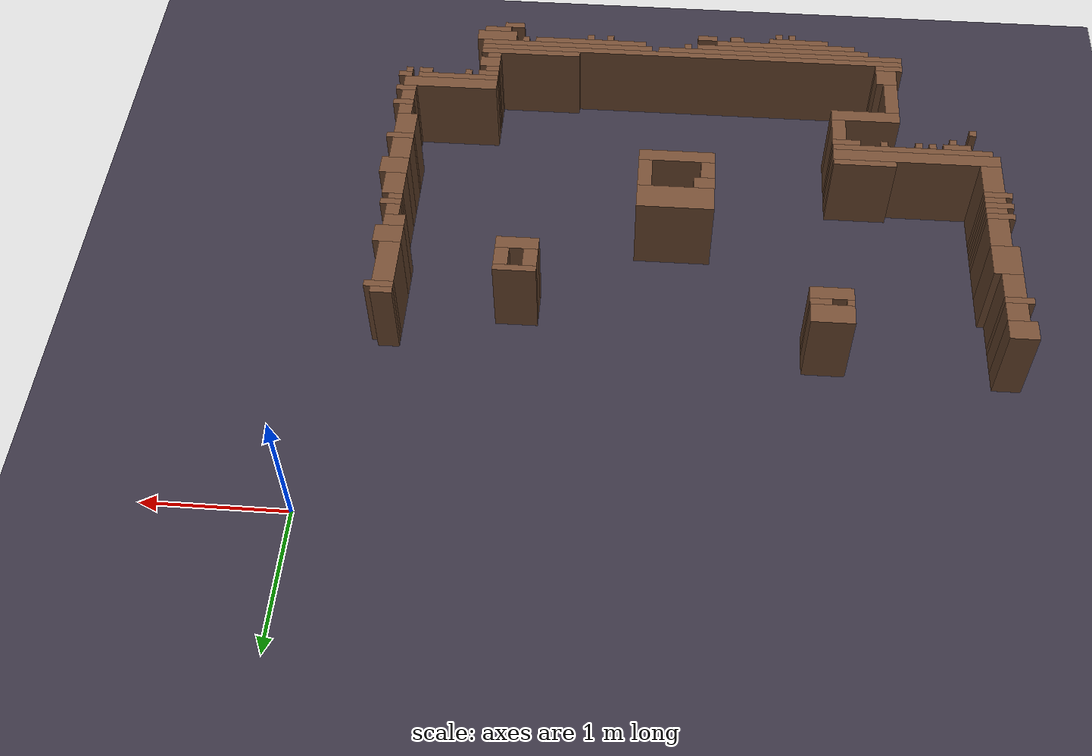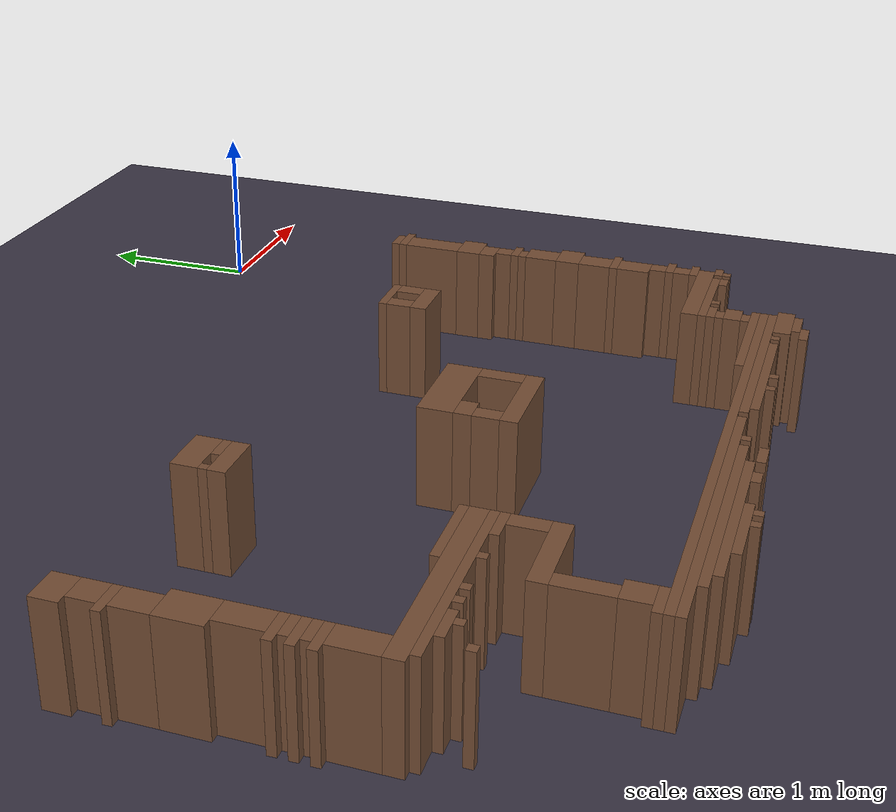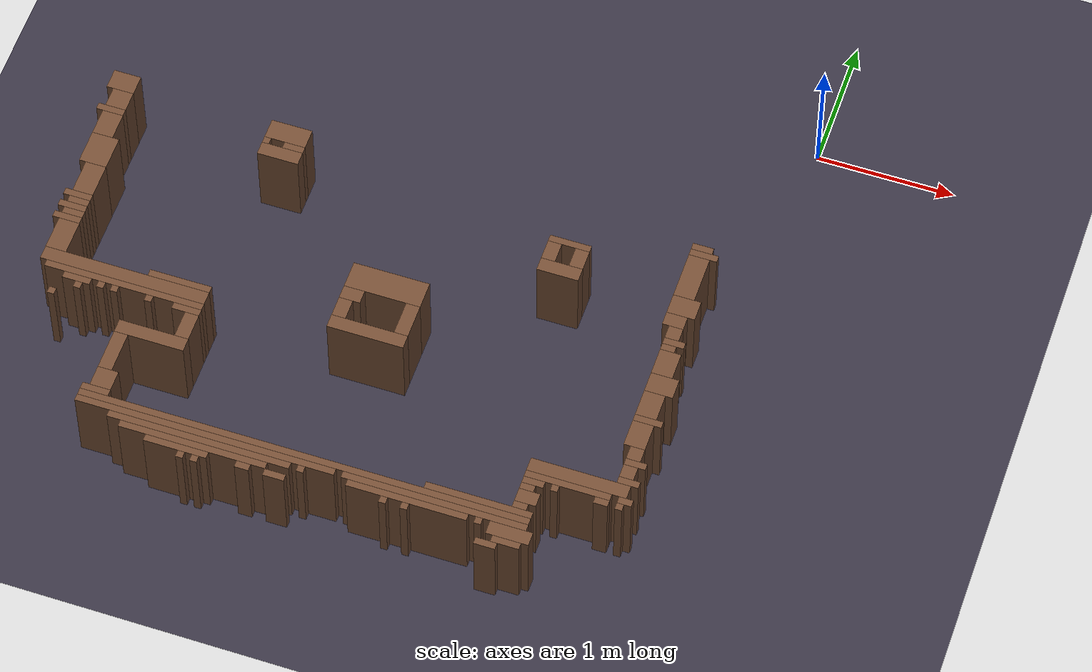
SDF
<sdf version="1.8">
 <world name="holloween">
  <model name="ground_plane">
   <static>true</static>
   <link name="link">
    <collision name="collision">
     <geometry><plane><normal>0 0 1</normal><size>100 100</size></plane></geometry>
    </collision>
    <visual name="visual">
     <geometry><plane><normal>0 0 1</normal><size>100 100</size></plane></geometry>
     <material><ambient>0.22 0.2 0.26 1</ambient><diffuse>0.22 0.2 0.26 1</diffuse></material>
    </visual>
   </link>
  </model>
  <model name="wall_86">
   <static>true</static>
   <pose>-4.709 -1.351 0.300 0 0 0</pose>
   <link name="l">
    <collision name="c"><geometry><box><size>0.200 0.150 0.600</size></box></geometry></collision>
    <visual name="v">
     <geometry><box><size>0.200 0.150 0.600</size></box></geometry>
     <material><ambient>0.45 0.3 0.2 1</ambient><diffuse>0.45 0.3 0.2 1</diffuse></material>
    </visual>
   </link>
  </model>
  <model name="wall_87">
   <static>true</static>
   <pose>-0.434 -1.401 0.300 0 0 0</pose>
   <link name="l">
    <collision name="c"><geometry><box><size>0.150 0.050 0.600</size></box></geometry></collision>
    <visual name="v">
     <geometry><box><size>0.150 0.050 0.600</size></box></geometry>
     <material><ambient>0.45 0.3 0.2 1</ambient><diffuse>0.45 0.3 0.2 1</diffuse></material>
    </visual>
   </link>
  </model>
  <model name="wall_88">
   <static>true</static>
   <pose>-3.459 -1.401 0.300 0 0 0</pose>
   <link name="l">
    <collision name="c"><geometry><box><size>0.300 0.150 0.600</size></box></geometry></collision>
    <visual name="v">
     <geometry><box><size>0.300 0.150 0.600</size></box></geometry>
     <material><ambient>0.45 0.3 0.2 1</ambient><diffuse>0.45 0.3 0.2 1</diffuse></material>
    </visual>
   </link>
  </model>
  <model name="wall_89">
   <static>true</static>
   <pose>-0.409 -1.451 0.300 0 0 0</pose>
   <link name="l">
    <collision name="c"><geometry><box><size>0.200 0.050 0.600</size></box></geometry></collision>
    <visual name="v">
     <geometry><box><size>0.200 0.050 0.600</size></box></geometry>
     <material><ambient>0.45 0.3 0.2 1</ambient><diffuse>0.45 0.3 0.2 1</diffuse></material>
    </visual>
   </link>
  </model>
  <model name="wall_90">
   <static>true</static>
   <pose>-3.384 -1.501 0.300 0 0 0</pose>
   <link name="l">
    <collision name="c"><geometry><box><size>0.150 0.050 0.600</size></box></geometry></collision>
    <visual name="v">
     <geometry><box><size>0.150 0.050 0.600</size></box></geometry>
     <material><ambient>0.45 0.3 0.2 1</ambient><diffuse>0.45 0.3 0.2 1</diffuse></material>
    </visual>
   </link>
  </model>
  <model name="wall_91">
   <static>true</static>
   <pose>-3.584 -1.501 0.300 0 0 0</pose>
   <link name="l">
    <collision name="c"><geometry><box><size>0.050 0.050 0.600</size></box></geometry></collision>
    <visual name="v">
     <geometry><box><size>0.050 0.050 0.600</size></box></geometry>
     <material><ambient>0.45 0.3 0.2 1</ambient><diffuse>0.45 0.3 0.2 1</diffuse></material>
    </visual>
   </link>
  </model>
  <model name="wall_92">
   <static>true</static>
   <pose>-4.684 -1.501 0.300 0 0 0</pose>
   <link name="l">
    <collision name="c"><geometry><box><size>0.150 0.150 0.600</size></box></geometry></collision>
    <visual name="v">
     <geometry><box><size>0.150 0.150 0.600</size></box></geometry>
     <material><ambient>0.45 0.3 0.2 1</ambient><diffuse>0.45 0.3 0.2 1</diffuse></material>
    </visual>
   </link>
  </model>
  <model name="wall_93">
   <static>true</static>
   <pose>-3.459 -1.576 0.300 0 0 0</pose>
   <link name="l">
    <collision name="c"><geometry><box><size>0.300 0.100 0.600</size></box></geometry></collision>
    <visual name="v">
     <geometry><box><size>0.300 0.100 0.600</size></box></geometry>
     <material><ambient>0.45 0.3 0.2 1</ambient><diffuse>0.45 0.3 0.2 1</diffuse></material>
    </visual>
   </link>
  </model>
  <model name="wall_94">
   <static>true</static>
   <pose>-4.709 -1.601 0.300 0 0 0</pose>
   <link name="l">
    <collision name="c"><geometry><box><size>0.200 0.050 0.600</size></box></geometry></collision>
    <visual name="v">
     <geometry><box><size>0.200 0.050 0.600</size></box></geometry>
     <material><ambient>0.45 0.3 0.2 1</ambient><diffuse>0.45 0.3 0.2 1</diffuse></material>
    </visual>
   </link>
  </model>
  <model name="wall_95">
   <static>true</static>
   <pose>-1.309 -1.651 0.300 0 0 0</pose>
   <link name="l">
    <collision name="c"><geometry><box><size>0.300 0.050 0.600</size></box></geometry></collision>
    <visual name="v">
     <geometry><box><size>0.300 0.050 0.600</size></box></geometry>
     <material><ambient>0.45 0.3 0.2 1</ambient><diffuse>0.45 0.3 0.2 1</diffuse></material>
    </visual>
   </link>
  </model>
  <model name="wall_96">
   <static>true</static>
   <pose>-0.434 -1.651 0.300 0 0 0</pose>
   <link name="l">
    <collision name="c"><geometry><box><size>0.150 0.350 0.600</size></box></geometry></collision>
    <visual name="v">
     <geometry><box><size>0.150 0.350 0.600</size></box></geometry>
     <material><ambient>0.45 0.3 0.2 1</ambient><diffuse>0.45 0.3 0.2 1</diffuse></material>
    </visual>
   </link>
  </model>
  <model name="wall_97">
   <static>true</static>
   <pose>-4.684 -1.726 0.300 0 0 0</pose>
   <link name="l">
    <collision name="c"><geometry><box><size>0.150 0.200 0.600</size></box></geometry></collision>
    <visual name="v">
     <geometry><box><size>0.150 0.200 0.600</size></box></geometry>
     <material><ambient>0.45 0.3 0.2 1</ambient><diffuse>0.45 0.3 0.2 1</diffuse></material>
    </visual>
   </link>
  </model>
  <model name="wall_98">
   <static>true</static>
   <pose>-1.409 -1.751 0.300 0 0 0</pose>
   <link name="l">
    <collision name="c"><geometry><box><size>0.100 0.150 0.600</size></box></geometry></collision>
    <visual name="v">
     <geometry><box><size>0.100 0.150 0.600</size></box></geometry>
     <material><ambient>0.45 0.3 0.2 1</ambient><diffuse>0.45 0.3 0.2 1</diffuse></material>
    </visual>
   </link>
  </model>
  <model name="wall_99">
   <static>true</static>
   <pose>-1.209 -1.751 0.300 0 0 0</pose>
   <link name="l">
    <collision name="c"><geometry><box><size>0.100 0.150 0.600</size></box></geometry></collision>
    <visual name="v">
     <geometry><box><size>0.100 0.150 0.600</size></box></geometry>
     <material><ambient>0.45 0.3 0.2 1</ambient><diffuse>0.45 0.3 0.2 1</diffuse></material>
    </visual>
   </link>
  </model>
  <model name="wall_100">
   <static>true</static>
   <pose>-1.309 -1.876 0.300 0 0 0</pose>
   <link name="l">
    <collision name="c"><geometry><box><size>0.300 0.100 0.600</size></box></geometry></collision>
    <visual name="v">
     <geometry><box><size>0.300 0.100 0.600</size></box></geometry>
     <material><ambient>0.45 0.3 0.2 1</ambient><diffuse>0.45 0.3 0.2 1</diffuse></material>
    </visual>
   </link>
  </model>
  <model name="wall_101">
   <static>true</static>
   <pose>-0.409 -1.901 0.300 0 0 0</pose>
   <link name="l">
    <collision name="c"><geometry><box><size>0.200 0.150 0.600</size></box></geometry></collision>
    <visual name="v">
     <geometry><box><size>0.200 0.150 0.600</size></box></geometry>
     <material><ambient>0.45 0.3 0.2 1</ambient><diffuse>0.45 0.3 0.2 1</diffuse></material>
    </visual>
   </link>
  </model>
  <model name="wall_102">
   <static>true</static>
   <pose>-4.659 -1.951 0.300 0 0 0</pose>
   <link name="l">
    <collision name="c"><geometry><box><size>0.200 0.250 0.600</size></box></geometry></collision>
    <visual name="v">
     <geometry><box><size>0.200 0.250 0.600</size></box></geometry>
     <material><ambient>0.45 0.3 0.2 1</ambient><diffuse>0.45 0.3 0.2 1</diffuse></material>
    </visual>
   </link>
  </model>
  <model name="wall_103">
   <static>true</static>
   <pose>-0.434 -2.026 0.300 0 0 0</pose>
   <link name="l">
    <collision name="c"><geometry><box><size>0.150 0.100 0.600</size></box></geometry></collision>
    <visual name="v">
     <geometry><box><size>0.150 0.100 0.600</size></box></geometry>
     <material><ambient>0.45 0.3 0.2 1</ambient><diffuse>0.45 0.3 0.2 1</diffuse></material>
    </visual>
   </link>
  </model>
  <model name="wall_104">
   <static>true</static>
   <pose>-0.409 -2.126 0.300 0 0 0</pose>
   <link name="l">
    <collision name="c"><geometry><box><size>0.100 0.100 0.600</size></box></geometry></collision>
    <visual name="v">
     <geometry><box><size>0.100 0.100 0.600</size></box></geometry>
     <material><ambient>0.45 0.3 0.2 1</ambient><diffuse>0.45 0.3 0.2 1</diffuse></material>
    </visual>
   </link>
  </model>
  <model name="wall_105">
   <static>true</static>
   <pose>-0.384 -2.201 0.300 0 0 0</pose>
   <link name="l">
    <collision name="c"><geometry><box><size>0.150 0.050 0.600</size></box></geometry></collision>
    <visual name="v">
     <geometry><box><size>0.150 0.050 0.600</size></box></geometry>
     <material><ambient>0.45 0.3 0.2 1</ambient><diffuse>0.45 0.3 0.2 1</diffuse></material>
    </visual>
   </link>
  </model>
  <model name="wall_106">
   <static>true</static>
   <pose>-0.409 -2.251 0.300 0 0 0</pose>
   <link name="l">
    <collision name="c"><geometry><box><size>0.100 0.050 0.600</size></box></geometry></collision>
    <visual name="v">
     <geometry><box><size>0.100 0.050 0.600</size></box></geometry>
     <material><ambient>0.45 0.3 0.2 1</ambient><diffuse>0.45 0.3 0.2 1</diffuse></material>
    </visual>
   </link>
  </model>
  <model name="wall_107">
   <static>true</static>
   <pose>-4.634 -2.201 0.300 0 0 0</pose>
   <link name="l">
    <collision name="c"><geometry><box><size>0.150 0.250 0.600</size></box></geometry></collision>
    <visual name="v">
     <geometry><box><size>0.150 0.250 0.600</size></box></geometry>
     <material><ambient>0.45 0.3 0.2 1</ambient><diffuse>0.45 0.3 0.2 1</diffuse></material>
    </visual>
   </link>
  </model>
  <model name="wall_108">
   <static>true</static>
   <pose>-4.659 -2.351 0.300 0 0 0</pose>
   <link name="l">
    <collision name="c"><geometry><box><size>0.200 0.050 0.600</size></box></geometry></collision>
    <visual name="v">
     <geometry><box><size>0.200 0.050 0.600</size></box></geometry>
     <material><ambient>0.45 0.3 0.2 1</ambient><diffuse>0.45 0.3 0.2 1</diffuse></material>
    </visual>
   </link>
  </model>
  <model name="wall_109">
   <static>true</static>
   <pose>-4.634 -2.401 0.300 0 0 0</pose>
   <link name="l">
    <collision name="c"><geometry><box><size>0.150 0.050 0.600</size></box></geometry></collision>
    <visual name="v">
     <geometry><box><size>0.150 0.050 0.600</size></box></geometry>
     <material><ambient>0.45 0.3 0.2 1</ambient><diffuse>0.45 0.3 0.2 1</diffuse></material>
    </visual>
   </link>
  </model>
  <model name="wall_110">
   <static>true</static>
   <pose>-0.384 -2.376 0.300 0 0 0</pose>
   <link name="l">
    <collision name="c"><geometry><box><size>0.150 0.200 0.600</size></box></geometry></collision>
    <visual name="v">
     <geometry><box><size>0.150 0.200 0.600</size></box></geometry>
     <material><ambient>0.45 0.3 0.2 1</ambient><diffuse>0.45 0.3 0.2 1</diffuse></material>
    </visual>
   </link>
  </model>
  <model name="wall_111">
   <static>true</static>
   <pose>-2.384 -2.376 0.300 0 0 0</pose>
   <link name="l">
    <collision name="c"><geometry><box><size>0.550 0.200 0.600</size></box></geometry></collision>
    <visual name="v">
     <geometry><box><size>0.550 0.200 0.600</size></box></geometry>
     <material><ambient>0.45 0.3 0.2 1</ambient><diffuse>0.45 0.3 0.2 1</diffuse></material>
    </visual>
   </link>
  </model>
  <model name="wall_112">
   <static>true</static>
   <pose>-4.659 -2.451 0.300 0 0 0</pose>
   <link name="l">
    <collision name="c"><geometry><box><size>0.200 0.050 0.600</size></box></geometry></collision>
    <visual name="v">
     <geometry><box><size>0.200 0.050 0.600</size></box></geometry>
     <material><ambient>0.45 0.3 0.2 1</ambient><diffuse>0.45 0.3 0.2 1</diffuse></material>
    </visual>
   </link>
  </model>
  <model name="wall_113">
   <static>true</static>
   <pose>-4.634 -2.501 0.300 0 0 0</pose>
   <link name="l">
    <collision name="c"><geometry><box><size>0.150 0.050 0.600</size></box></geometry></collision>
    <visual name="v">
     <geometry><box><size>0.150 0.050 0.600</size></box></geometry>
     <material><ambient>0.45 0.3 0.2 1</ambient><diffuse>0.45 0.3 0.2 1</diffuse></material>
    </visual>
   </link>
  </model>
  <model name="wall_114">
   <static>true</static>
   <pose>-2.584 -2.526 0.300 0 0 0</pose>
   <link name="l">
    <collision name="c"><geometry><box><size>0.150 0.100 0.600</size></box></geometry></collision>
    <visual name="v">
     <geometry><box><size>0.150 0.100 0.600</size></box></geometry>
     <material><ambient>0.45 0.3 0.2 1</ambient><diffuse>0.45 0.3 0.2 1</diffuse></material>
    </visual>
   </link>
  </model>
  <model name="wall_115">
   <static>true</static>
   <pose>-4.659 -2.551 0.300 0 0 0</pose>
   <link name="l">
    <collision name="c"><geometry><box><size>0.200 0.050 0.600</size></box></geometry></collision>
    <visual name="v">
     <geometry><box><size>0.200 0.050 0.600</size></box></geometry>
     <material><ambient>0.45 0.3 0.2 1</ambient><diffuse>0.45 0.3 0.2 1</diffuse></material>
    </visual>
   </link>
  </model>
  <model name="wall_116">
   <static>true</static>
   <pose>-0.359 -2.551 0.300 0 0 0</pose>
   <link name="l">
    <collision name="c"><geometry><box><size>0.200 0.150 0.600</size></box></geometry></collision>
    <visual name="v">
     <geometry><box><size>0.200 0.150 0.600</size></box></geometry>
     <material><ambient>0.45 0.3 0.2 1</ambient><diffuse>0.45 0.3 0.2 1</diffuse></material>
    </visual>
   </link>
  </model>
  <model name="wall_117">
   <static>true</static>
   <pose>-2.159 -2.601 0.300 0 0 0</pose>
   <link name="l">
    <collision name="c"><geometry><box><size>0.100 0.250 0.600</size></box></geometry></collision>
    <visual name="v">
     <geometry><box><size>0.100 0.250 0.600</size></box></geometry>
     <material><ambient>0.45 0.3 0.2 1</ambient><diffuse>0.45 0.3 0.2 1</diffuse></material>
    </visual>
   </link>
  </model>
  <model name="wall_118">
   <static>true</static>
   <pose>-2.609 -2.651 0.300 0 0 0</pose>
   <link name="l">
    <collision name="c"><geometry><box><size>0.100 0.150 0.600</size></box></geometry></collision>
    <visual name="v">
     <geometry><box><size>0.100 0.150 0.600</size></box></geometry>
     <material><ambient>0.45 0.3 0.2 1</ambient><diffuse>0.45 0.3 0.2 1</diffuse></material>
    </visual>
   </link>
  </model>
  <model name="wall_119">
   <static>true</static>
   <pose>-4.634 -2.701 0.300 0 0 0</pose>
   <link name="l">
    <collision name="c"><geometry><box><size>0.150 0.250 0.600</size></box></geometry></collision>
    <visual name="v">
     <geometry><box><size>0.150 0.250 0.600</size></box></geometry>
     <material><ambient>0.45 0.3 0.2 1</ambient><diffuse>0.45 0.3 0.2 1</diffuse></material>
    </visual>
   </link>
  </model>
  <model name="wall_120">
   <static>true</static>
   <pose>-0.384 -2.726 0.300 0 0 0</pose>
   <link name="l">
    <collision name="c"><geometry><box><size>0.150 0.200 0.600</size></box></geometry></collision>
    <visual name="v">
     <geometry><box><size>0.150 0.200 0.600</size></box></geometry>
     <material><ambient>0.45 0.3 0.2 1</ambient><diffuse>0.45 0.3 0.2 1</diffuse></material>
    </visual>
   </link>
  </model>
  <model name="wall_121">
   <static>true</static>
   <pose>-2.384 -2.776 0.300 0 0 0</pose>
   <link name="l">
    <collision name="c"><geometry><box><size>0.550 0.100 0.600</size></box></geometry></collision>
    <visual name="v">
     <geometry><box><size>0.550 0.100 0.600</size></box></geometry>
     <material><ambient>0.45 0.3 0.2 1</ambient><diffuse>0.45 0.3 0.2 1</diffuse></material>
    </visual>
   </link>
  </model>
  <model name="wall_122">
   <static>true</static>
   <pose>-3.734 -2.801 0.300 0 0 0</pose>
   <link name="l">
    <collision name="c"><geometry><box><size>0.450 0.050 0.600</size></box></geometry></collision>
    <visual name="v">
     <geometry><box><size>0.450 0.050 0.600</size></box></geometry>
     <material><ambient>0.45 0.3 0.2 1</ambient><diffuse>0.45 0.3 0.2 1</diffuse></material>
    </visual>
   </link>
  </model>
  <model name="wall_123">
   <static>true</static>
   <pose>-0.359 -2.851 0.300 0 0 0</pose>
   <link name="l">
    <collision name="c"><geometry><box><size>0.200 0.050 0.600</size></box></geometry></collision>
    <visual name="v">
     <geometry><box><size>0.200 0.050 0.600</size></box></geometry>
     <material><ambient>0.45 0.3 0.2 1</ambient><diffuse>0.45 0.3 0.2 1</diffuse></material>
    </visual>
   </link>
  </model>
  <model name="wall_124">
   <static>true</static>
   <pose>-4.109 -2.876 0.300 0 0 0</pose>
   <link name="l">
    <collision name="c"><geometry><box><size>1.200 0.100 0.600</size></box></geometry></collision>
    <visual name="v">
     <geometry><box><size>1.200 0.100 0.600</size></box></geometry>
     <material><ambient>0.45 0.3 0.2 1</ambient><diffuse>0.45 0.3 0.2 1</diffuse></material>
    </visual>
   </link>
  </model>
  <model name="wall_125">
   <static>true</static>
   <pose>-4.084 -2.951 0.300 0 0 0</pose>
   <link name="l">
    <collision name="c"><geometry><box><size>1.150 0.050 0.600</size></box></geometry></collision>
    <visual name="v">
     <geometry><box><size>1.150 0.050 0.600</size></box></geometry>
     <material><ambient>0.45 0.3 0.2 1</ambient><diffuse>0.45 0.3 0.2 1</diffuse></material>
    </visual>
   </link>
  </model>
  <model name="wall_126">
   <static>true</static>
   <pose>-3.609 -3.001 0.300 0 0 0</pose>
   <link name="l">
    <collision name="c"><geometry><box><size>0.200 0.050 0.600</size></box></geometry></collision>
    <visual name="v">
     <geometry><box><size>0.200 0.050 0.600</size></box></geometry>
     <material><ambient>0.45 0.3 0.2 1</ambient><diffuse>0.45 0.3 0.2 1</diffuse></material>
    </visual>
   </link>
  </model>
  <model name="wall_127">
   <static>true</static>
   <pose>-3.884 -3.001 0.300 0 0 0</pose>
   <link name="l">
    <collision name="c"><geometry><box><size>0.050 0.050 0.600</size></box></geometry></collision>
    <visual name="v">
     <geometry><box><size>0.050 0.050 0.600</size></box></geometry>
     <material><ambient>0.45 0.3 0.2 1</ambient><diffuse>0.45 0.3 0.2 1</diffuse></material>
    </visual>
   </link>
  </model>
  <model name="wall_128">
   <static>true</static>
   <pose>-4.234 -3.001 0.300 0 0 0</pose>
   <link name="l">
    <collision name="c"><geometry><box><size>0.050 0.050 0.600</size></box></geometry></collision>
    <visual name="v">
     <geometry><box><size>0.050 0.050 0.600</size></box></geometry>
     <material><ambient>0.45 0.3 0.2 1</ambient><diffuse>0.45 0.3 0.2 1</diffuse></material>
    </visual>
   </link>
  </model>
  <model name="wall_129">
   <static>true</static>
   <pose>-4.409 -3.001 0.300 0 0 0</pose>
   <link name="l">
    <collision name="c"><geometry><box><size>0.200 0.050 0.600</size></box></geometry></collision>
    <visual name="v">
     <geometry><box><size>0.200 0.050 0.600</size></box></geometry>
     <material><ambient>0.45 0.3 0.2 1</ambient><diffuse>0.45 0.3 0.2 1</diffuse></material>
    </visual>
   </link>
  </model>
  <model name="wall_130">
   <static>true</static>
   <pose>-4.134 -3.001 0.300 0 0 0</pose>
   <link name="l">
    <collision name="c"><geometry><box><size>0.050 0.050 0.600</size></box></geometry></collision>
    <visual name="v">
     <geometry><box><size>0.050 0.050 0.600</size></box></geometry>
     <material><ambient>0.45 0.3 0.2 1</ambient><diffuse>0.45 0.3 0.2 1</diffuse></material>
    </visual>
   </link>
  </model>
  <model name="wall_131">
   <static>true</static>
   <pose>-0.384 -2.976 0.300 0 0 0</pose>
   <link name="l">
    <collision name="c"><geometry><box><size>0.150 0.200 0.600</size></box></geometry></collision>
    <visual name="v">
     <geometry><box><size>0.150 0.200 0.600</size></box></geometry>
     <material><ambient>0.45 0.3 0.2 1</ambient><diffuse>0.45 0.3 0.2 1</diffuse></material>
    </visual>
   </link>
  </model>
  <model name="wall_132">
   <static>true</static>
   <pose>-4.384 -3.051 0.300 0 0 0</pose>
   <link name="l">
    <collision name="c"><geometry><box><size>0.050 0.050 0.600</size></box></geometry></collision>
    <visual name="v">
     <geometry><box><size>0.050 0.050 0.600</size></box></geometry>
     <material><ambient>0.45 0.3 0.2 1</ambient><diffuse>0.45 0.3 0.2 1</diffuse></material>
    </visual>
   </link>
  </model>
  <model name="wall_133">
   <static>true</static>
   <pose>-0.359 -3.126 0.300 0 0 0</pose>
   <link name="l">
    <collision name="c"><geometry><box><size>0.100 0.100 0.600</size></box></geometry></collision>
    <visual name="v">
     <geometry><box><size>0.100 0.100 0.600</size></box></geometry>
     <material><ambient>0.45 0.3 0.2 1</ambient><diffuse>0.45 0.3 0.2 1</diffuse></material>
    </visual>
   </link>
  </model>
  <model name="wall_134">
   <static>true</static>
   <pose>-4.534 -3.151 0.300 0 0 0</pose>
   <link name="l">
    <collision name="c"><geometry><box><size>0.050 0.050 0.600</size></box></geometry></collision>
    <visual name="v">
     <geometry><box><size>0.050 0.050 0.600</size></box></geometry>
     <material><ambient>0.45 0.3 0.2 1</ambient><diffuse>0.45 0.3 0.2 1</diffuse></material>
    </visual>
   </link>
  </model>
  <model name="wall_135">
   <static>true</static>
   <pose>-3.559 -3.126 0.300 0 0 0</pose>
   <link name="l">
    <collision name="c"><geometry><box><size>0.100 0.200 0.600</size></box></geometry></collision>
    <visual name="v">
     <geometry><box><size>0.100 0.200 0.600</size></box></geometry>
     <material><ambient>0.45 0.3 0.2 1</ambient><diffuse>0.45 0.3 0.2 1</diffuse></material>
    </visual>
   </link>
  </model>
  <model name="wall_136">
   <static>true</static>
   <pose>-0.334 -3.201 0.300 0 0 0</pose>
   <link name="l">
    <collision name="c"><geometry><box><size>0.150 0.050 0.600</size></box></geometry></collision>
    <visual name="v">
     <geometry><box><size>0.150 0.050 0.600</size></box></geometry>
     <material><ambient>0.45 0.3 0.2 1</ambient><diffuse>0.45 0.3 0.2 1</diffuse></material>
    </visual>
   </link>
  </model>
  <model name="wall_137">
   <static>true</static>
   <pose>-0.359 -3.276 0.300 0 0 0</pose>
   <link name="l">
    <collision name="c"><geometry><box><size>0.100 0.100 0.600</size></box></geometry></collision>
    <visual name="v">
     <geometry><box><size>0.100 0.100 0.600</size></box></geometry>
     <material><ambient>0.45 0.3 0.2 1</ambient><diffuse>0.45 0.3 0.2 1</diffuse></material>
    </visual>
   </link>
  </model>
  <model name="wall_138">
   <static>true</static>
   <pose>-3.759 -3.276 0.300 0 0 0</pose>
   <link name="l">
    <collision name="c"><geometry><box><size>0.500 0.100 0.600</size></box></geometry></collision>
    <visual name="v">
     <geometry><box><size>0.500 0.100 0.600</size></box></geometry>
     <material><ambient>0.45 0.3 0.2 1</ambient><diffuse>0.45 0.3 0.2 1</diffuse></material>
    </visual>
   </link>
  </model>
  <model name="wall_139">
   <static>true</static>
   <pose>-0.334 -3.351 0.300 0 0 0</pose>
   <link name="l">
    <collision name="c"><geometry><box><size>0.150 0.050 0.600</size></box></geometry></collision>
    <visual name="v">
     <geometry><box><size>0.150 0.050 0.600</size></box></geometry>
     <material><ambient>0.45 0.3 0.2 1</ambient><diffuse>0.45 0.3 0.2 1</diffuse></material>
    </visual>
   </link>
  </model>
  <model name="wall_140">
   <static>true</static>
   <pose>-0.659 -3.426 0.300 0 0 0</pose>
   <link name="l">
    <collision name="c"><geometry><box><size>0.700 0.100 0.600</size></box></geometry></collision>
    <visual name="v">
     <geometry><box><size>0.700 0.100 0.600</size></box></geometry>
     <material><ambient>0.45 0.3 0.2 1</ambient><diffuse>0.45 0.3 0.2 1</diffuse></material>
    </visual>
   </link>
  </model>
  <model name="wall_141">
   <static>true</static>
   <pose>-0.309 -3.501 0.300 0 0 0</pose>
   <link name="l">
    <collision name="c"><geometry><box><size>0.100 0.050 0.600</size></box></geometry></collision>
    <visual name="v">
     <geometry><box><size>0.100 0.050 0.600</size></box></geometry>
     <material><ambient>0.45 0.3 0.2 1</ambient><diffuse>0.45 0.3 0.2 1</diffuse></material>
    </visual>
   </link>
  </model>
  <model name="wall_142">
   <static>true</static>
   <pose>-0.709 -3.501 0.300 0 0 0</pose>
   <link name="l">
    <collision name="c"><geometry><box><size>0.600 0.050 0.600</size></box></geometry></collision>
    <visual name="v">
     <geometry><box><size>0.600 0.050 0.600</size></box></geometry>
     <material><ambient>0.45 0.3 0.2 1</ambient><diffuse>0.45 0.3 0.2 1</diffuse></material>
    </visual>
   </link>
  </model>
  <model name="wall_143">
   <static>true</static>
   <pose>-0.784 -3.551 0.300 0 0 0</pose>
   <link name="l">
    <collision name="c"><geometry><box><size>0.050 0.050 0.600</size></box></geometry></collision>
    <visual name="v">
     <geometry><box><size>0.050 0.050 0.600</size></box></geometry>
     <material><ambient>0.45 0.3 0.2 1</ambient><diffuse>0.45 0.3 0.2 1</diffuse></material>
    </visual>
   </link>
  </model>
  <model name="wall_144">
   <static>true</static>
   <pose>-0.334 -3.551 0.300 0 0 0</pose>
   <link name="l">
    <collision name="c"><geometry><box><size>0.050 0.050 0.600</size></box></geometry></collision>
    <visual name="v">
     <geometry><box><size>0.050 0.050 0.600</size></box></geometry>
     <material><ambient>0.45 0.3 0.2 1</ambient><diffuse>0.45 0.3 0.2 1</diffuse></material>
    </visual>
   </link>
  </model>
  <model name="wall_145">
   <static>true</static>
   <pose>-0.459 -3.551 0.300 0 0 0</pose>
   <link name="l">
    <collision name="c"><geometry><box><size>0.100 0.050 0.600</size></box></geometry></collision>
    <visual name="v">
     <geometry><box><size>0.100 0.050 0.600</size></box></geometry>
     <material><ambient>0.45 0.3 0.2 1</ambient><diffuse>0.45 0.3 0.2 1</diffuse></material>
    </visual>
   </link>
  </model>
  <model name="wall_146">
   <static>true</static>
   <pose>-0.934 -3.551 0.300 0 0 0</pose>
   <link name="l">
    <collision name="c"><geometry><box><size>0.150 0.050 0.600</size></box></geometry></collision>
    <visual name="v">
     <geometry><box><size>0.150 0.050 0.600</size></box></geometry>
     <material><ambient>0.45 0.3 0.2 1</ambient><diffuse>0.45 0.3 0.2 1</diffuse></material>
    </visual>
   </link>
  </model>
  <model name="wall_147">
   <static>true</static>
   <pose>-3.959 -3.476 0.300 0 0 0</pose>
   <link name="l">
    <collision name="c"><geometry><box><size>0.100 0.300 0.600</size></box></geometry></collision>
    <visual name="v">
     <geometry><box><size>0.100 0.300 0.600</size></box></geometry>
     <material><ambient>0.45 0.3 0.2 1</ambient><diffuse>0.45 0.3 0.2 1</diffuse></material>
    </visual>
   </link>
  </model>
  <model name="wall_148">
   <static>true</static>
   <pose>-0.959 -3.601 0.300 0 0 0</pose>
   <link name="l">
    <collision name="c"><geometry><box><size>0.100 0.050 0.600</size></box></geometry></collision>
    <visual name="v">
     <geometry><box><size>0.100 0.050 0.600</size></box></geometry>
     <material><ambient>0.45 0.3 0.2 1</ambient><diffuse>0.45 0.3 0.2 1</diffuse></material>
    </visual>
   </link>
  </model>
  <model name="wall_149">
   <static>true</static>
   <pose>-0.934 -3.676 0.300 0 0 0</pose>
   <link name="l">
    <collision name="c"><geometry><box><size>0.150 0.100 0.600</size></box></geometry></collision>
    <visual name="v">
     <geometry><box><size>0.150 0.100 0.600</size></box></geometry>
     <material><ambient>0.45 0.3 0.2 1</ambient><diffuse>0.45 0.3 0.2 1</diffuse></material>
    </visual>
   </link>
  </model>
  <model name="wall_150">
   <static>true</static>
   <pose>-3.934 -3.701 0.300 0 0 0</pose>
   <link name="l">
    <collision name="c"><geometry><box><size>0.150 0.150 0.600</size></box></geometry></collision>
    <visual name="v">
     <geometry><box><size>0.150 0.150 0.600</size></box></geometry>
     <material><ambient>0.45 0.3 0.2 1</ambient><diffuse>0.45 0.3 0.2 1</diffuse></material>
    </visual>
   </link>
  </model>
  <model name="wall_151">
   <static>true</static>
   <pose>-0.959 -3.751 0.300 0 0 0</pose>
   <link name="l">
    <collision name="c"><geometry><box><size>0.100 0.050 0.600</size></box></geometry></collision>
    <visual name="v">
     <geometry><box><size>0.100 0.050 0.600</size></box></geometry>
     <material><ambient>0.45 0.3 0.2 1</ambient><diffuse>0.45 0.3 0.2 1</diffuse></material>
    </visual>
   </link>
  </model>
  <model name="wall_152">
   <static>true</static>
   <pose>-3.959 -3.801 0.300 0 0 0</pose>
   <link name="l">
    <collision name="c"><geometry><box><size>0.200 0.050 0.600</size></box></geometry></collision>
    <visual name="v">
     <geometry><box><size>0.200 0.050 0.600</size></box></geometry>
     <material><ambient>0.45 0.3 0.2 1</ambient><diffuse>0.45 0.3 0.2 1</diffuse></material>
    </visual>
   </link>
  </model>
  <model name="wall_153">
   <static>true</static>
   <pose>-1.234 -3.801 0.300 0 0 0</pose>
   <link name="l">
    <collision name="c"><geometry><box><size>0.750 0.050 0.600</size></box></geometry></collision>
    <visual name="v">
     <geometry><box><size>0.750 0.050 0.600</size></box></geometry>
     <material><ambient>0.45 0.3 0.2 1</ambient><diffuse>0.45 0.3 0.2 1</diffuse></material>
    </visual>
   </link>
  </model>
  <model name="wall_154">
   <static>true</static>
   <pose>-2.459 -3.851 0.300 0 0 0</pose>
   <link name="l">
    <collision name="c"><geometry><box><size>3.200 0.050 0.600</size></box></geometry></collision>
    <visual name="v">
     <geometry><box><size>3.200 0.050 0.600</size></box></geometry>
     <material><ambient>0.45 0.3 0.2 1</ambient><diffuse>0.45 0.3 0.2 1</diffuse></material>
    </visual>
   </link>
  </model>
  <model name="wall_155">
   <static>true</static>
   <pose>-1.509 -3.901 0.300 0 0 0</pose>
   <link name="l">
    <collision name="c"><geometry><box><size>1.300 0.050 0.600</size></box></geometry></collision>
    <visual name="v">
     <geometry><box><size>1.300 0.050 0.600</size></box></geometry>
     <material><ambient>0.45 0.3 0.2 1</ambient><diffuse>0.45 0.3 0.2 1</diffuse></material>
    </visual>
   </link>
  </model>
  <model name="wall_156">
   <static>true</static>
   <pose>-3.134 -3.901 0.300 0 0 0</pose>
   <link name="l">
    <collision name="c"><geometry><box><size>1.850 0.050 0.600</size></box></geometry></collision>
    <visual name="v">
     <geometry><box><size>1.850 0.050 0.600</size></box></geometry>
     <material><ambient>0.45 0.3 0.2 1</ambient><diffuse>0.45 0.3 0.2 1</diffuse></material>
    </visual>
   </link>
  </model>
  <model name="wall_157">
   <static>true</static>
   <pose>-1.684 -3.951 0.300 0 0 0</pose>
   <link name="l">
    <collision name="c"><geometry><box><size>0.850 0.050 0.600</size></box></geometry></collision>
    <visual name="v">
     <geometry><box><size>0.850 0.050 0.600</size></box></geometry>
     <material><ambient>0.45 0.3 0.2 1</ambient><diffuse>0.45 0.3 0.2 1</diffuse></material>
    </visual>
   </link>
  </model>
  <model name="wall_158">
   <static>true</static>
   <pose>-2.434 -3.951 0.300 0 0 0</pose>
   <link name="l">
    <collision name="c"><geometry><box><size>0.050 0.050 0.600</size></box></geometry></collision>
    <visual name="v">
     <geometry><box><size>0.050 0.050 0.600</size></box></geometry>
     <material><ambient>0.45 0.3 0.2 1</ambient><diffuse>0.45 0.3 0.2 1</diffuse></material>
    </visual>
   </link>
  </model>
  <model name="wall_159">
   <static>true</static>
   <pose>-1.184 -3.951 0.300 0 0 0</pose>
   <link name="l">
    <collision name="c"><geometry><box><size>0.050 0.050 0.600</size></box></geometry></collision>
    <visual name="v">
     <geometry><box><size>0.050 0.050 0.600</size></box></geometry>
     <material><ambient>0.45 0.3 0.2 1</ambient><diffuse>0.45 0.3 0.2 1</diffuse></material>
    </visual>
   </link>
  </model>
  <model name="wall_160">
   <static>true</static>
   <pose>-3.159 -3.951 0.300 0 0 0</pose>
   <link name="l">
    <collision name="c"><geometry><box><size>1.300 0.050 0.600</size></box></geometry></collision>
    <visual name="v">
     <geometry><box><size>1.300 0.050 0.600</size></box></geometry>
     <material><ambient>0.45 0.3 0.2 1</ambient><diffuse>0.45 0.3 0.2 1</diffuse></material>
    </visual>
   </link>
  </model>
  <model name="wall_161">
   <static>true</static>
   <pose>-0.959 -3.976 0.300 0 0 0</pose>
   <link name="l">
    <collision name="c"><geometry><box><size>0.300 0.100 0.600</size></box></geometry></collision>
    <visual name="v">
     <geometry><box><size>0.300 0.100 0.600</size></box></geometry>
     <material><ambient>0.45 0.3 0.2 1</ambient><diffuse>0.45 0.3 0.2 1</diffuse></material>
    </visual>
   </link>
  </model>
  <model name="wall_162">
   <static>true</static>
   <pose>-3.184 -4.001 0.300 0 0 0</pose>
   <link name="l">
    <collision name="c"><geometry><box><size>1.050 0.050 0.600</size></box></geometry></collision>
    <visual name="v">
     <geometry><box><size>1.050 0.050 0.600</size></box></geometry>
     <material><ambient>0.45 0.3 0.2 1</ambient><diffuse>0.45 0.3 0.2 1</diffuse></material>
    </visual>
   </link>
  </model>
  <model name="wall_163">
   <static>true</static>
   <pose>-1.684 -4.001 0.300 0 0 0</pose>
   <link name="l">
    <collision name="c"><geometry><box><size>0.050 0.050 0.600</size></box></geometry></collision>
    <visual name="v">
     <geometry><box><size>0.050 0.050 0.600</size></box></geometry>
     <material><ambient>0.45 0.3 0.2 1</ambient><diffuse>0.45 0.3 0.2 1</diffuse></material>
    </visual>
   </link>
  </model>
  <model name="wall_164">
   <static>true</static>
   <pose>-1.834 -4.001 0.300 0 0 0</pose>
   <link name="l">
    <collision name="c"><geometry><box><size>0.050 0.050 0.600</size></box></geometry></collision>
    <visual name="v">
     <geometry><box><size>0.050 0.050 0.600</size></box></geometry>
     <material><ambient>0.45 0.3 0.2 1</ambient><diffuse>0.45 0.3 0.2 1</diffuse></material>
    </visual>
   </link>
  </model>
  <model name="wall_165">
   <static>true</static>
   <pose>-3.284 -4.051 0.300 0 0 0</pose>
   <link name="l">
    <collision name="c"><geometry><box><size>0.450 0.050 0.600</size></box></geometry></collision>
    <visual name="v">
     <geometry><box><size>0.450 0.050 0.600</size></box></geometry>
     <material><ambient>0.45 0.3 0.2 1</ambient><diffuse>0.45 0.3 0.2 1</diffuse></material>
    </visual>
   </link>
  </model>
  <model name="wall_166">
   <static>true</static>
   <pose>-2.584 -4.051 0.300 0 0 0</pose>
   <link name="l">
    <collision name="c"><geometry><box><size>0.150 0.050 0.600</size></box></geometry></collision>
    <visual name="v">
     <geometry><box><size>0.150 0.050 0.600</size></box></geometry>
     <material><ambient>0.45 0.3 0.2 1</ambient><diffuse>0.45 0.3 0.2 1</diffuse></material>
    </visual>
   </link>
  </model>
  <model name="wall_167">
   <static>true</static>
   <pose>-2.809 -4.051 0.300 0 0 0</pose>
   <link name="l">
    <collision name="c"><geometry><box><size>0.100 0.050 0.600</size></box></geometry></collision>
    <visual name="v">
     <geometry><box><size>0.100 0.050 0.600</size></box></geometry>
     <material><ambient>0.45 0.3 0.2 1</ambient><diffuse>0.45 0.3 0.2 1</diffuse></material>
    </visual>
   </link>
  </model>
  <model name="wall_168">
   <static>true</static>
   <pose>-0.959 -4.051 0.300 0 0 0</pose>
   <link name="l">
    <collision name="c"><geometry><box><size>0.200 0.050 0.600</size></box></geometry></collision>
    <visual name="v">
     <geometry><box><size>0.200 0.050 0.600</size></box></geometry>
     <material><ambient>0.45 0.3 0.2 1</ambient><diffuse>0.45 0.3 0.2 1</diffuse></material>
    </visual>
   </link>
  </model>
  <model name="wall_169">
   <static>true</static>
   <pose>-3.234 -4.101 0.300 0 0 0</pose>
   <link name="l">
    <collision name="c"><geometry><box><size>0.050 0.050 0.600</size></box></geometry></collision>
    <visual name="v">
     <geometry><box><size>0.050 0.050 0.600</size></box></geometry>
     <material><ambient>0.45 0.3 0.2 1</ambient><diffuse>0.45 0.3 0.2 1</diffuse></material>
    </visual>
   </link>
  </model>
  <model name="wall_170">
   <static>true</static>
   <pose>-3.134 -4.101 0.300 0 0 0</pose>
   <link name="l">
    <collision name="c"><geometry><box><size>0.050 0.050 0.600</size></box></geometry></collision>
    <visual name="v">
     <geometry><box><size>0.050 0.050 0.600</size></box></geometry>
     <material><ambient>0.45 0.3 0.2 1</ambient><diffuse>0.45 0.3 0.2 1</diffuse></material>
    </visual>
   </link>
  </model>
  <model name="wall_171">
   <static>true</static>
   <pose>-1.084 -4.101 0.300 0 0 0</pose>
   <link name="l">
    <collision name="c"><geometry><box><size>0.150 0.050 0.600</size></box></geometry></collision>
    <visual name="v">
     <geometry><box><size>0.150 0.050 0.600</size></box></geometry>
     <material><ambient>0.45 0.3 0.2 1</ambient><diffuse>0.45 0.3 0.2 1</diffuse></material>
    </visual>
   </link>
  </model>
 </world>
</sdf>
